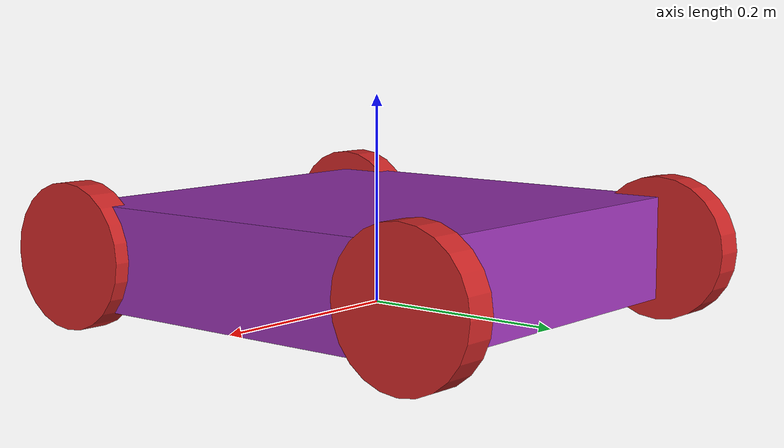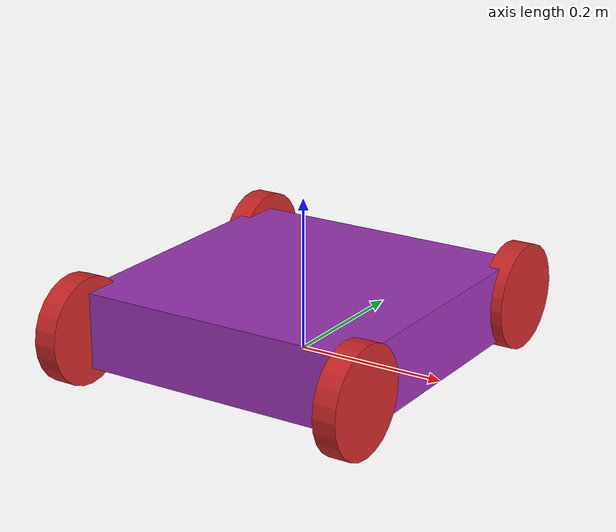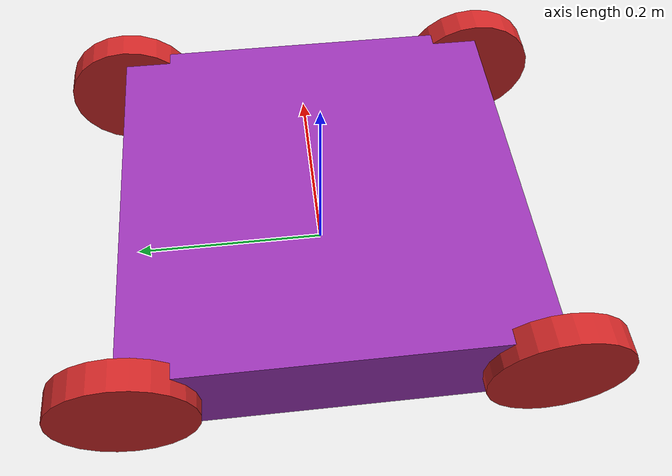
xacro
<?xml version="1.0"?>
<robot xmlns:xacro="http://www.ros.org/wiki/xacro" name="robot">

    <xacro:include filename="material.xacro" />
    <xacro:include filename="inertial_calc.xacro" />
    <!--xacro:include filename="$(find robot_description)/urdf/robot_gz.gazebo" /-->

  <xacro:property name="arm_radius" value="0.5"/>
  <!--cylinder radius= "${arm_radius}" length="7"/-->

  <link name="world"/>   <!-- Dummy link for the robot's base -->

  <joint name="world_to_base_link" type="fixed">
    <parent link="world"/>
    <child link="base_link"/>
    <origin xyz="0 0 0.05" rpy="0 0 0"/>
  </joint>

<link name="base_link">
    <visual>
      <origin xyz="0 0 0" rpy="0 0 0"/>
      <geometry>
        <box size="0.4 0.4 0.1"/>
      </geometry>
      <material name="purple"/>
    </visual>

    <collision>
      <geometry>
        <box size= "0.4 0.4 0.1"/>
      </geometry>
    </collision>

    <xacro:box_inertial mass="0.1" x="0.4" y="0.4" z="0.1">      <!-- Describe how the distribution of mass affects the rotation of the link -->
      <origin xyz="0 0 0" rpy="0 0 0"/>
    </xacro:box_inertial>
  </link>

  <joint name="base_to_front_right_wheel" type="continuous">
    <parent link="base_link"/>
    <child link="front_right_wheel"/>
    <origin xyz="0.2 0.2 0.0" rpy="0 1.57075 0" />
    <axis xyz="0 0 1"/>

  </joint>

   <link name="front_right_wheel">
    <visual>
      <geometry>
        <cylinder radius="0.07" length="0.03"/>
      </geometry>
      <material name="red"/>
    </visual>
    <collision>
      <origin xyz="0 0 0" rpy="0 0 0"/>
      <geometry>
        <cylinder radius="0.07" length="0.03"/>
      </geometry>
    </collision>
    <xacro:cylinder_inertial mass="0.1" radius="0.07" length="0.03">
      <origin xyz="0 0 0" rpy="0 0 0"/>
    </xacro:cylinder_inertial>

  </link>

  <joint name="base_to_front_left_wheel" type="continuous">
    <parent link="base_link"/>
    <child link="front_left_wheel"/>
    <origin xyz="-0.2 0.2 0.0" rpy="0 1.57075 0" />
    <axis xyz="0 0 1"/>

  </joint>

   <link name="front_left_wheel">
    <visual>
      <geometry>
        <cylinder radius="0.07" length="0.03"/>
      </geometry>
      <material name="red"/>
    </visual>
    <collision>
      <origin xyz="0 0 0" rpy="0 0 0"/>
      <geometry>
        <cylinder radius="0.07" length="0.03"/>
      </geometry>
    </collision>
    <xacro:cylinder_inertial mass="0.1" radius="0.07" length="0.03">
      <origin xyz="0 0 0" rpy="0 0 0"/>
    </xacro:cylinder_inertial>

  </link>

  <joint name="base_to_back_left_wheel" type="continuous">
    <parent link="base_link"/>
    <child link="back_left_wheel"/>
    <origin xyz="-0.2 -0.2 0.0" rpy="0 1.57075 0" />
    <axis xyz="0 0 1"/>

  </joint>

   <link name="back_left_wheel">
    <visual>
      <geometry>
        <cylinder radius="0.07" length="0.03"/>
      </geometry>
      <material name="red"/>
    </visual>
    <collision>
      <origin xyz="0 0 0" rpy="0 0 0"/>
      <geometry>
        <cylinder radius="0.07" length="0.03"/>
      </geometry>
    </collision>
    <xacro:cylinder_inertial mass="0.1" radius="0.07" length="0.03">
      <origin xyz="0 0 0" rpy="0 0 0"/>
    </xacro:cylinder_inertial>

  </link>

<joint name="base_to_back_right_wheel" type="continuous">
    <parent link="base_link"/>
    <child link="back_right_wheel"/>
    <origin xyz="0.2 -0.2 0.0" rpy="0 1.57075 0" />
    <axis xyz="0 0 1"/>
  </joint>

   <link name="back_right_wheel">
    <visual>
      <geometry>
        <cylinder radius="0.07" length="0.03"/>
      </geometry>
      <material name="red"/>
    </visual>
    <collision>
      <origin xyz="0 0 0" rpy="0 0 0"/>
      <geometry>
        <cylinder radius="0.07" length="0.03"/>
      </geometry>
    </collision>
    <xacro:cylinder_inertial mass="0.1" radius="0.07" length="0.03">
      <origin xyz="0 0 0" rpy="0 0 0"/>
    </xacro:cylinder_inertial>

  </link>

  <gazebo>
  <plugin name="differential_drive_controller" filename="libgazebo_ros_diff_drive.so">

    <!-- Plugin update rate in Hz -->
    <updateRate>10</updateRate>

    <!-- Name of left joint, defaults to `left_joint` -->
    <leftJoint>base_to_back_left_wheel</leftJoint>

    <!-- Name of right joint, defaults to `right_joint` -->
    <rightJoint>base_to_back_right_wheel</rightJoint>

    <!-- The distance from the center of one wheel to the other, in meters, defaults to 0.34 m -->
    <wheelSeparation>0.5380</wheelSeparation>

    <!-- Diameter of the wheels, in meters, defaults to 0.15 m -->
    <wheelDiameter>0.2410</wheelDiameter>

    <!-- Wheel acceleration, in rad/s^2, defaults to 0.0 rad/s^2 -->
    <wheelAcceleration>1.0</wheelAcceleration>

    <!-- Maximum torque which the wheels can produce, in Nm, defaults to 5 Nm -->
    <wheelTorque>20</wheelTorque>

    <!-- Topic to receive geometry_msgs/Twist message commands, defaults to `cmd_vel` -->
    <commandTopic>cmd_vel</commandTopic>

    <!-- Topic to publish nav_msgs/Odometry messages, defaults to `odom` -->
    <odometryTopic>odom</odometryTopic>

    <!-- Odometry frame, defaults to `odom` -->
    <odometryFrame>odom</odometryFrame>

    <!-- Robot frame to calculate odometry from, defaults to `base_footprint` -->
    <robotBaseFrame>base_footprint</robotBaseFrame>

    <!-- Odometry source, 0 for ENCODER, 1 for WORLD, defaults to WORLD -->
    <odometrySource>1</odometrySource>

    <!-- Set to true to publish transforms for the wheel links, defaults to false -->
    <publishWheelTF>true</publishWheelTF>

    <!-- Set to true to publish transforms for the odometry, defaults to true -->
    <publishOdom>true</publishOdom>

    <!-- Set to true to publish sensor_msgs/JointState on /joint_states for the wheel joints, defaults to false -->
    <publishWheelJointState>true</publishWheelJointState>

    <!-- Set to true to swap right and left wheels, defaults to true -->
    <legacyMode>false</legacyMode>
  </plugin>
</gazebo>

</robot>

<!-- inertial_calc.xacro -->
<robot xmlns:xacro="http://www.ros.org/wiki/xacro" >

<xacro:macro name="box_inertial" params="mass x y z *origin">
    <inertial>
    <xacro:insert_block name="origin"/>
    <mass value="${mass}" />
    <inertia
        ixx="${mass * (y*y + z*z) / 12}"
        ixy="0"
        ixz="0"
        iyy="${mass * (x*x + z*z) / 12}"
        iyz="0"
        izz="${mass * (x*x + y*y) / 12}" />
    </inertial>
</xacro:macro>

<xacro:macro name="cylinder_inertial" params="mass radius length *origin">
    <inertial>
    <xacro:insert_block name="origin"/>
    <mass value="${mass}" />
    <inertia
        ixx="${mass * (3 * radius * radius + length * length) / 12}"
        ixy="0"
        ixz="0"
        iyy="${mass * (3 * radius * radius + length * length) / 12}"
        iyz="0"
        izz="${mass * radius * radius / 2}" />
    </inertial>
</xacro:macro>

<xacro:macro name="sphere_inertial" params="mass radius *origin">
    <inertial>
    <xacro:insert_block name="origin"/>
    <mass value="${mass}" />
    <inertia
        ixx="${2 * mass * radius * radius / 5}"
        ixy="0"
        ixz="0"
        iyy="${2 * mass * radius * radius / 5}"
        iyz="0"
        izz="${2 * mass * radius * radius / 5}" />
    </inertial>
</xacro:macro>

</robot>
